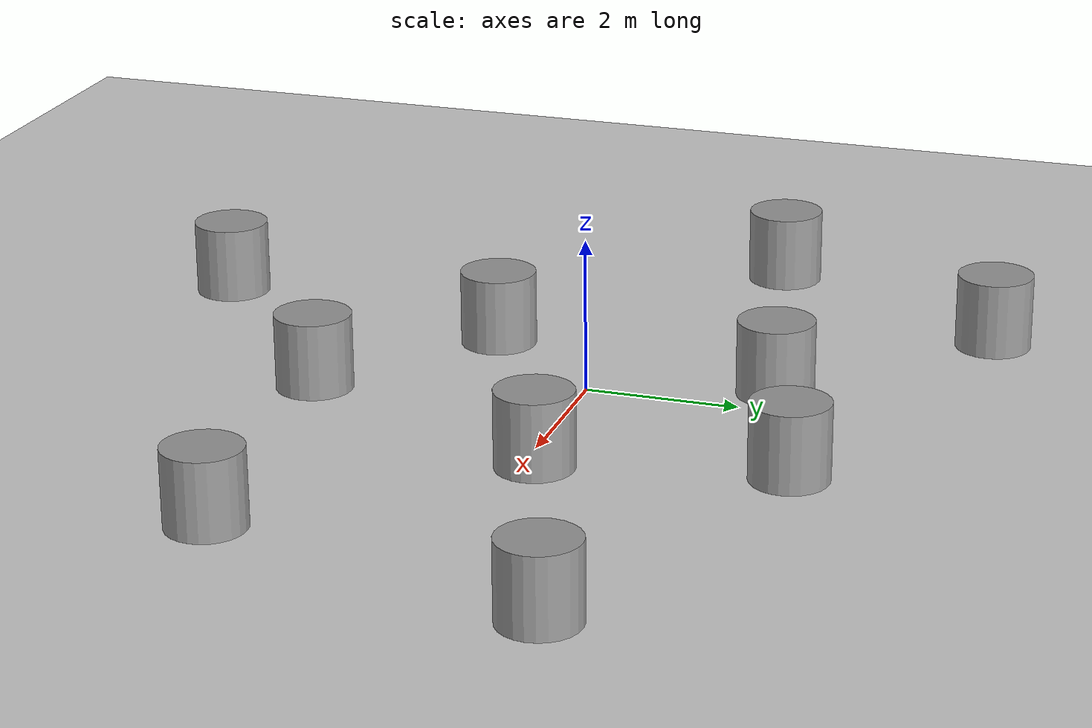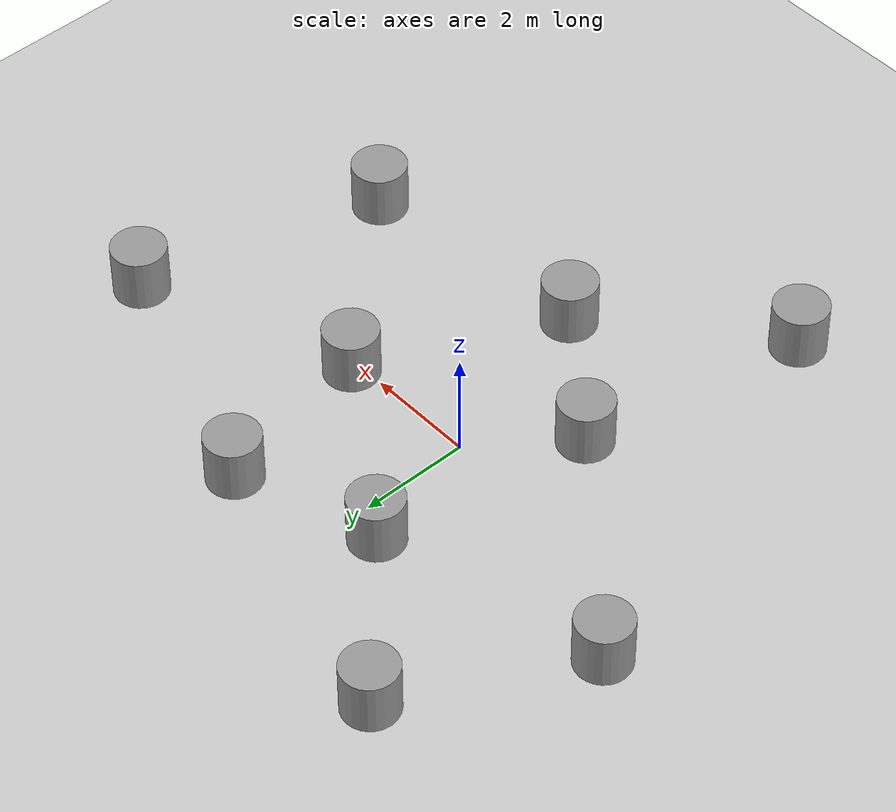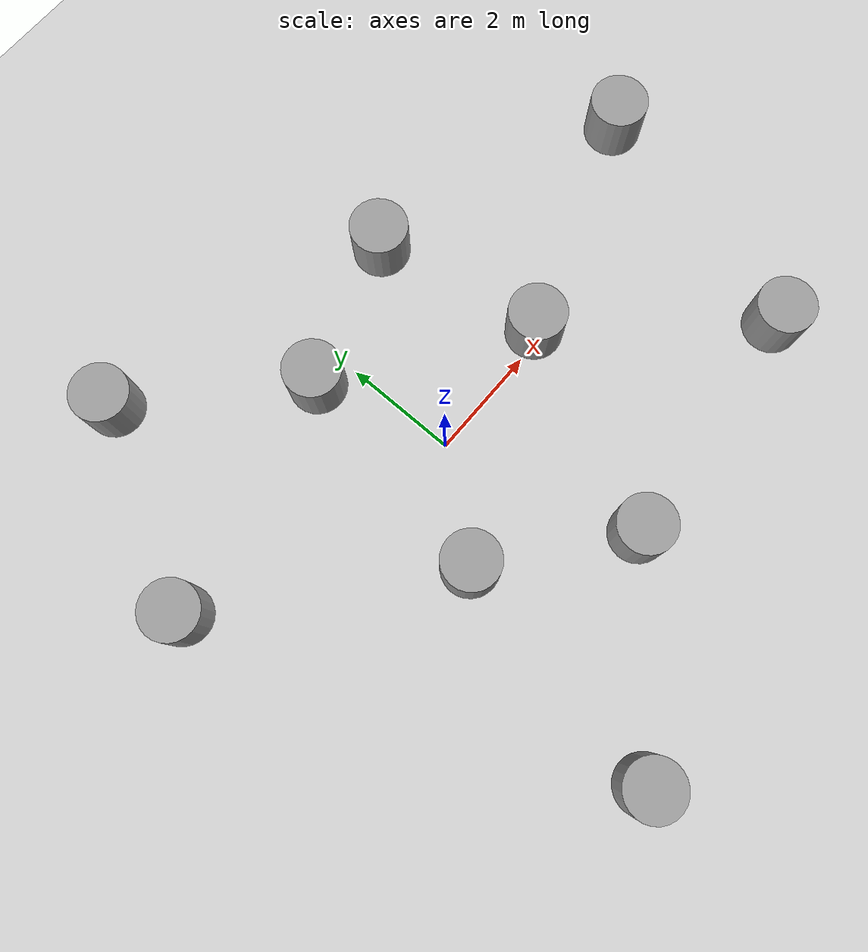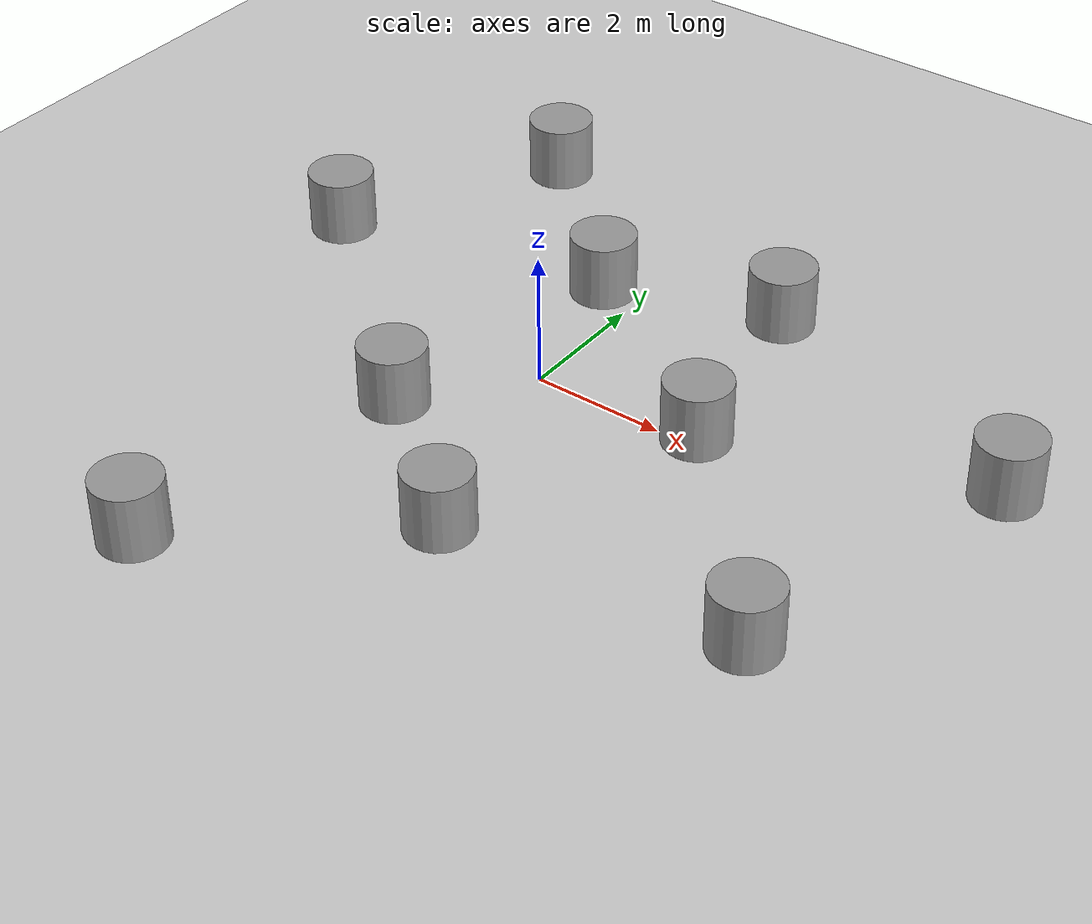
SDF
<sdf version="1.6">
 <world name="default">
  <light name="sun" type="directional">
   <pose>0 0 10 0 -0 0</pose>
   <diffuse>0.8 0.8 0.8 1</diffuse>
   <specular>0.1 0.1 0.1 1</specular>
   <attenuation>
    <range>1000</range>
    <constant>0.9</constant>
    <linear>0.01</linear>
    <quadratic>0.001</quadratic>
   </attenuation>
   <direction>-0.5 0.5 -1</direction>
  </light>
  <model name="ground_plane">
   <static>1</static>
   <link name="link">
    <collision name="collision">
     <geometry><plane><normal>0 0 1</normal><size>100 100</size></plane></geometry>
     <surface><friction><ode><mu>100</mu><mu2>50</mu2></ode></friction></surface>
    </collision>
    <visual name="visual">
     <cast_shadows>0</cast_shadows>
     <geometry><plane><normal>0 0 1</normal><size>100 100</size></plane></geometry>
     <material>
      <script><uri>file://media/materials/scripts/gazebo.material</uri><name>Gazebo/Grey</name></script>
     </material>
    </visual>
   </link>
  </model>
  <gravity>0 0 -9.8</gravity>
  <magnetic_field>6e-06 2.3e-05 -4.2e-05</magnetic_field>
  <atmosphere type="adiabatic"/>
  <physics name="default_physics" default="0" type="ode">
   <max_step_size>0.001</max_step_size>
   <real_time_factor>1</real_time_factor>
   <real_time_update_rate>1000</real_time_update_rate>
  </physics>
  <scene><ambient>0.4 0.4 0.4 1</ambient><background>0.7 0.7 0.7 1</background><shadows>1</shadows></scene>
  <spherical_coordinates>
   <surface_model>EARTH_WGS84</surface_model>
   <latitude_deg>0</latitude_deg>
   <longitude_deg>0</longitude_deg>
   <elevation>0</elevation>
   <heading_deg>0</heading_deg>
  </spherical_coordinates>
  <model name="unit_cylinder_0">
   <pose>1.98468 3.16135 0.499998 3e-06 -2e-06 0</pose>
   <link name="link">
    <inertial>
     <mass>1</mass>
     <inertia><ixx>0.145833</ixx><ixy>0</ixy><ixz>0</ixz><iyy>0.145833</iyy><iyz>0</iyz><izz>0.125</izz></inertia>
    </inertial>
    <collision name="collision">
     <geometry><cylinder><radius>0.5</radius><length>1</length></cylinder></geometry>
    </collision>
    <visual name="visual">
     <geometry><cylinder><radius>0.5</radius><length>1</length></cylinder></geometry>
     <material>
      <script><name>Gazebo/Grey</name><uri>file://media/materials/scripts/gazebo.material</uri></script>
     </material>
    </visual>
   </link>
  </model>
  <model name="unit_cylinder_1">
   <pose>5.28177 -2.87706 0.499992 -3e-06 2e-06 0</pose>
   <link name="link">
    <inertial>
     <mass>1</mass>
     <inertia><ixx>0.145833</ixx><ixy>0</ixy><ixz>0</ixz><iyy>0.145833</iyy><iyz>0</iyz><izz>0.125</izz></inertia>
    </inertial>
    <collision name="collision">
     <geometry><cylinder><radius>0.5</radius><length>1</length></cylinder></geometry>
    </collision>
    <visual name="visual">
     <geometry><cylinder><radius>0.5</radius><length>1</length></cylinder></geometry>
     <material>
      <script><name>Gazebo/Grey</name><uri>file://media/materials/scripts/gazebo.material</uri></script>
     </material>
    </visual>
   </link>
  </model>
  <model name="unit_cylinder_2">
   <pose>-2.10717 -5.81878 0.499994 -4e-06 -3e-06 -0</pose>
   <link name="link">
    <inertial>
     <mass>1</mass>
     <inertia><ixx>0.145833</ixx><ixy>0</ixy><ixz>0</ixz><iyy>0.145833</iyy><iyz>0</iyz><izz>0.125</izz></inertia>
    </inertial>
    <collision name="collision">
     <geometry><cylinder><radius>0.5</radius><length>1</length></cylinder></geometry>
    </collision>
    <visual name="visual">
     <geometry><cylinder><radius>0.5</radius><length>1</length></cylinder></geometry>
     <material>
      <script><name>Gazebo/Grey</name><uri>file://media/materials/scripts/gazebo.material</uri></script>
     </material>
    </visual>
   </link>
  </model>
  <model name="unit_cylinder_3">
   <pose>-4.84711 1.38085 0.499992 -3e-06 3e-06 0</pose>
   <link name="link">
    <inertial>
     <mass>1</mass>
     <inertia><ixx>0.145833</ixx><ixy>0</ixy><ixz>0</ixz><iyy>0.145833</iyy><iyz>0</iyz><izz>0.125</izz></inertia>
    </inertial>
    <collision name="collision">
     <geometry><cylinder><radius>0.5</radius><length>1</length></cylinder></geometry>
    </collision>
    <visual name="visual">
     <geometry><cylinder><radius>0.5</radius><length>1</length></cylinder></geometry>
     <material>
      <script><name>Gazebo/Grey</name><uri>file://media/materials/scripts/gazebo.material</uri></script>
     </material>
    </visual>
   </link>
  </model>
  <model name="unit_cylinder_4">
   <pose>0.920585 -3.34566 0.499994 -4e-06 -3e-06 -0</pose>
   <link name="link">
    <inertial>
     <mass>1</mass>
     <inertia><ixx>0.145833</ixx><ixy>0</ixy><ixz>0</ixz><iyy>0.145833</iyy><iyz>0</iyz><izz>0.125</izz></inertia>
    </inertial>
    <collision name="collision">
     <geometry><cylinder><radius>0.5</radius><length>1</length></cylinder></geometry>
    </collision>
    <visual name="visual">
     <geometry><cylinder><radius>0.5</radius><length>1</length></cylinder></geometry>
     <material>
      <script><name>Gazebo/Grey</name><uri>file://media/materials/scripts/gazebo.material</uri></script>
     </material>
    </visual>
   </link>
  </model>
  <model name="unit_cylinder_5">
   <pose>6.46989 1.54289 0.499993 0 -0 0</pose>
   <link name="link">
    <inertial>
     <mass>1</mass>
     <inertia><ixx>0.145833</ixx><ixy>0</ixy><ixz>0</ixz><iyy>0.145833</iyy><iyz>0</iyz><izz>0.125</izz></inertia>
    </inertial>
    <collision name="collision">
     <geometry><cylinder><radius>0.5</radius><length>1</length></cylinder></geometry>
    </collision>
    <visual name="visual">
     <geometry><cylinder><radius>0.5</radius><length>1</length></cylinder></geometry>
     <material>
      <script><name>Gazebo/Grey</name><uri>file://media/materials/scripts/gazebo.material</uri></script>
     </material>
    </visual>
   </link>
  </model>
  <model name="unit_cylinder_6">
   <pose>-3.10526 4.65537 0.499998 3e-06 -3e-06 0</pose>
   <link name="link">
    <inertial>
     <mass>1</mass>
     <inertia><ixx>0.145833</ixx><ixy>0</ixy><ixz>0</ixz><iyy>0.145833</iyy><iyz>0</iyz><izz>0.125</izz></inertia>
    </inertial>
    <collision name="collision">
     <geometry><cylinder><radius>0.5</radius><length>1</length></cylinder></geometry>
    </collision>
    <visual name="visual">
     <geometry><cylinder><radius>0.5</radius><length>1</length></cylinder></geometry>
     <material>
      <script><name>Gazebo/Grey</name><uri>file://media/materials/scripts/gazebo.material</uri></script>
     </material>
    </visual>
   </link>
  </model>
  <model name="unit_cylinder_7">
   <pose>-0.591245 2.33035 0.499997 3e-06 4e-06 -0</pose>
   <link name="link">
    <inertial>
     <mass>1</mass>
     <inertia><ixx>0.145833</ixx><ixy>0</ixy><ixz>0</ixz><iyy>0.145833</iyy><iyz>0</iyz><izz>0.125</izz></inertia>
    </inertial>
    <collision name="collision">
     <geometry><cylinder><radius>0.5</radius><length>1</length></cylinder></geometry>
    </collision>
    <visual name="visual">
     <geometry><cylinder><radius>0.5</radius><length>1</length></cylinder></geometry>
     <material>
      <script><name>Gazebo/Grey</name><uri>file://media/materials/scripts/gazebo.material</uri></script>
     </material>
    </visual>
   </link>
  </model>
  <model name="unit_cylinder_8">
   <pose>-1.2854 -1.6264 0.499993 -3e-06 -4e-06 -0</pose>
   <link name="link">
    <inertial>
     <mass>1</mass>
     <inertia><ixx>0.145833</ixx><ixy>0</ixy><ixz>0</ixz><iyy>0.145833</iyy><iyz>0</iyz><izz>0.125</izz></inertia>
    </inertial>
    <collision name="collision">
     <geometry><cylinder><radius>0.5</radius><length>1</length></cylinder></geometry>
    </collision>
    <visual name="visual">
     <geometry><cylinder><radius>0.5</radius><length>1</length></cylinder></geometry>
     <material>
      <script><name>Gazebo/Grey</name><uri>file://media/materials/scripts/gazebo.material</uri></script>
     </material>
    </visual>
   </link>
  </model>
  <model name="unit_cylinder_9">
   <pose>2.53534 0.162732 0.499997 3e-06 4e-06 -0</pose>
   <link name="link">
    <inertial>
     <mass>1</mass>
     <inertia><ixx>0.145833</ixx><ixy>0</ixy><ixz>0</ixz><iyy>0.145833</iyy><iyz>0</iyz><izz>0.125</izz></inertia>
    </inertial>
    <collision name="collision">
     <geometry><cylinder><radius>0.5</radius><length>1</length></cylinder></geometry>
    </collision>
    <visual name="visual">
     <geometry><cylinder><radius>0.5</radius><length>1</length></cylinder></geometry>
     <material>
      <script><name>Gazebo/Grey</name><uri>file://media/materials/scripts/gazebo.material</uri></script>
     </material>
    </visual>
   </link>
  </model>
 </world>
</sdf>
